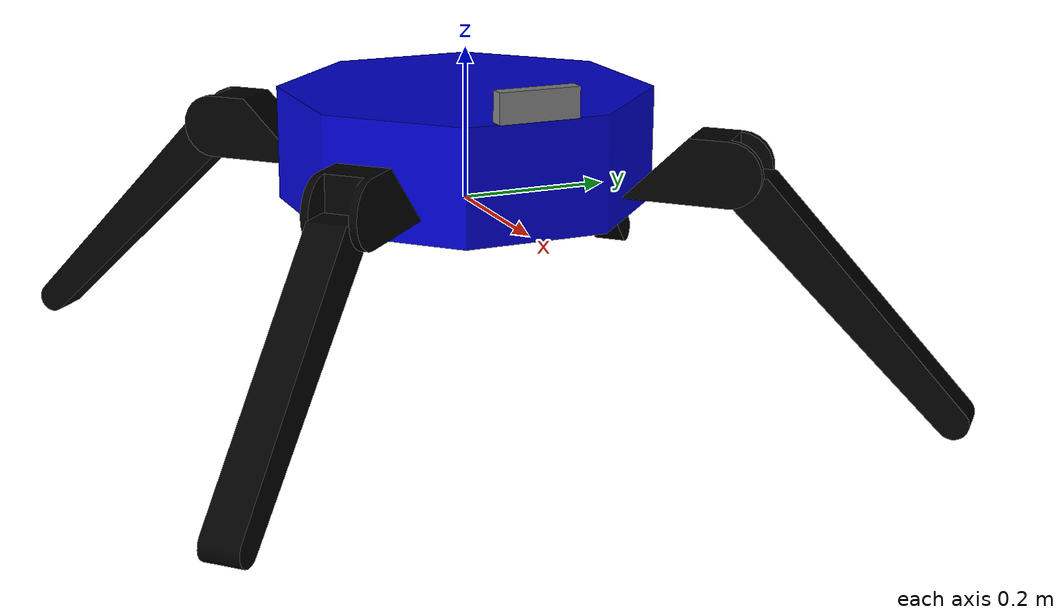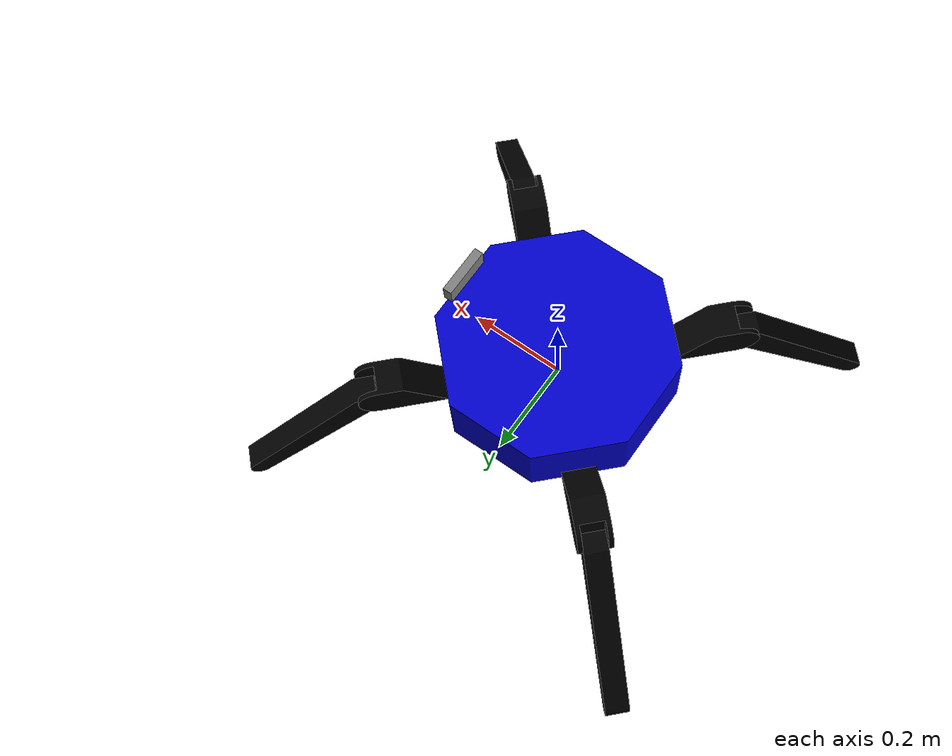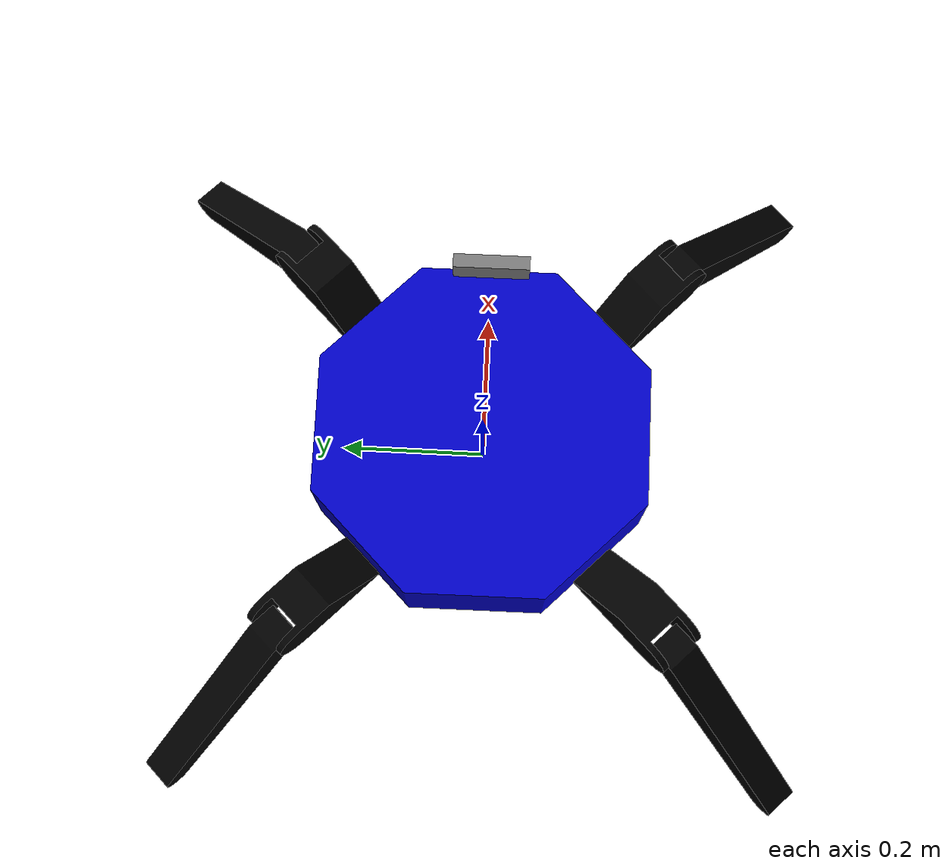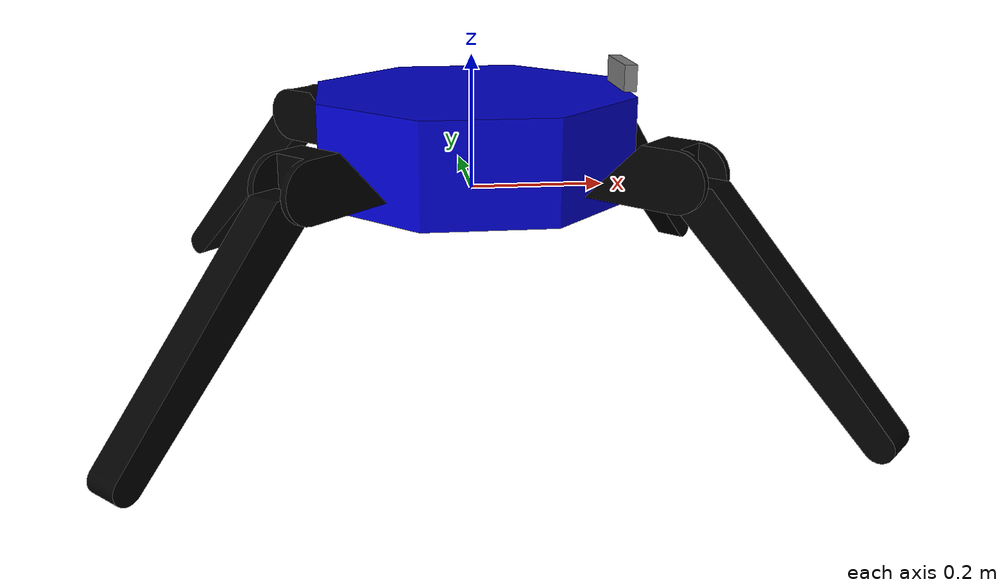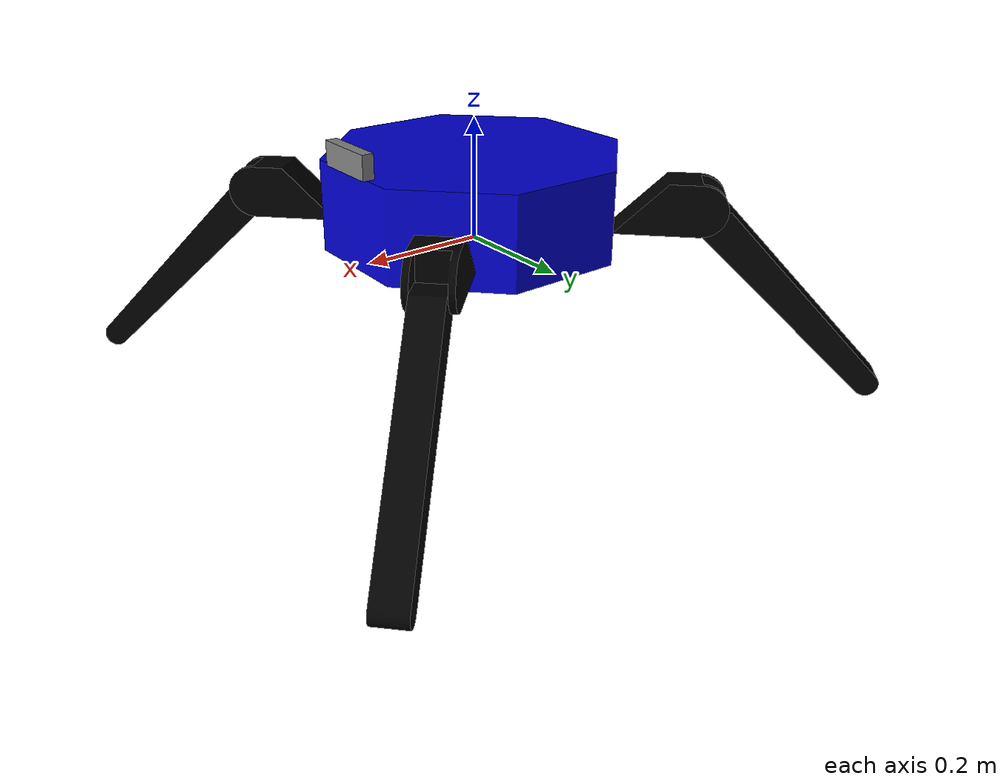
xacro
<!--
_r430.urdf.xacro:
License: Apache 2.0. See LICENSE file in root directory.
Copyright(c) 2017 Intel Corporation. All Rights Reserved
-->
<?xml version = "1.0"?>
<robot xmlns:xacro="http://ros.org/wiki/xacro" name="agent">

<xacro:include filename="$(find urdf_describe)/urdf/materials.xacro"/>
<xacro:include filename="$(find urdf_describe)/urdf/properties.xacro"/>
<xacro:include filename="$(find urdf_describe)/urdf/legs.urdf.xacro"/>
<xacro:include filename="$(find urdf_describe)/urdf/feet.urdf.xacro"/>
<xacro:include filename="$(find urdf_describe)/urdf/base.gazebo"/>
<xacro:include filename="$(find realsense2_camera)/urdf/test_r430_camera.urdf.xacro"/>
<xacro:include filename="$(find urdf_describe)/urdf/transmission.xacro"/>

    <!--base of the body-->
  <link name="link_hexabase">

    <inertial>
      <mass value="${hexa_mass}"/>
      <origin rpy="0 0 0" xyz="0 0 0"/>
      <inertia ixx="0.0395416666667" ixy="0" ixz="0" iyy="0.106208333333" iyz="0" izz="0.106208333333"/>
    </inertial>

    <collision name="collision_hexabase">
      <geometry>
        <mesh filename = "package://urdf_describe/meshes/hexabase.dae"/>
      </geometry>
    </collision>

    <visual>
      <origin rpy="0 0 0" xyz="0 0 0"/>
      <geometry>
        <mesh filename = "package://urdf_describe/meshes/hexabase.dae"/>
      </geometry>
      <material name="blue"/>
    </visual>

  </link>
  <!--camera linkage-->
  <joint name="hexabase2camera" type="fixed">
    <origin rpy="0 0 0" xyz="${hexa_radius} ${camera_calibration_y} ${hexa_height}"/>
    <child link="base_link" />
    <parent link="link_hexabase"/>
  </joint>

  <xacro:front_left_leg/>
  <xacro:front_right_leg/>
  <xacro:hind_left_leg/>
  <xacro:hind_right_leg/>

  <xacro:front_left_foot/>
  <xacro:front_right_foot/>
  <xacro:hind_left_foot/>
  <xacro:hind_right_foot/>

</robot>

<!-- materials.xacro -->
<robot name = "agent" xmlns:xacro = "http://ros.org/wiki/xacro">

  <material name="black">
    <color rgba="0.0 0.0 0.0 1.0"/>
  </material>

  <material name="blue">
    <color rgba="0.0 0.0 0.8 1.0"/>
  </material>

  <material name="green">
    <color rgba="0.0 0.8 0.0 1.0"/>
  </material>

  <material name="grey">
    <color rgba="0.2 0.2 0.2 1.0"/>
  </material>

  <material name="orange">
    <color rgba="${255/255} ${108/255} ${10/255} 1.0"/>
  </material>

  <material name="brown">
    <color rgba="${222/255} ${207/255} ${195/255} 1.0"/>
  </material>

  <material name="red">
    <color rgba="0.8 0.0 0.0 1.0"/>
  </material>

  <material name="white">
    <color rgba="1.0 1.0 1.0 1.0"/>
  </material>

</robot>

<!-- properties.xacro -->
<robot name = "agent" xmlns:xacro = "http://ros.org/wiki/xacro">

      <!--some constants-->
      <xacro:property name="PI" value="3.1415926535897931"/>
      <xacro:property name="PId2" value="1.57079632679489661923"/>
      <xacro:property name="PId4" value="0.78539816339744830961566"/>
      <xacro:property name="SquareRoot2" value = "1.4142135623730950488"/>
      <xacro:property name="SquareRoot3" value = "1.7320508075688772935274463415"/>

      <xacro:property name="UpperJointEffort" value="1000"/>
      <xacro:property name="UpperJointVelocity" value="100"/>

      <!--body property-->
      <xacro:property name="camera_calibration_y" value="0.025"/>
      <xacro:property name="hexa_side_length" value="0.19"/>
      <xacro:property name="hexa_diameter" value="0.45"/>
      <xacro:property name="hexa_radius" value="0.225"/>
      <xacro:property name="hexa_height" value="0.15"/>
      <xacro:property name="hexa_inner_angle" value="2.35619449"/>  <!--135 degree-->

      <xacro:property name="hexa_mass" value="5"/>

      <!--leg property-->
      <xacro:property name="leg_intra_length" value="0.14"/>
      <xacro:property name="leg_pos_from_bottem_hexabase" value="0.03"/>
      <xacro:property name="leg_inter_length" value="0.05"/>
      <xacro:property name="leg_diameter" value="0.08"/>
      <xacro:property name="leg_width" value="0.07"/>

      <xacro:property name="hipyaw_damping" value="0.3"/>   <!--dimension : (N * m * s)/rad-->
      <xacro:property name="hipyaw_friction" value="0.3"/>  <!--dimension : N * m-->
      <xacro:property name="hipyaw_lower_radians" value="0"/>
      <xacro:property name="hipyaw_upper_radians" value="${PId2}"/>
      <xacro:property name="hippitch_damping" value="0.3"/>   <!--dimension : (N * m * s)/rad-->
      <xacro:property name="hippitch_friction" value="0.3"/>  <!--dimension : N * m-->
      <xacro:property name="hippitch_lower_radians" value="0"/>
      <xacro:property name="hippitch_upper_radians" value="${PId2}"/>

      <xacro:property name="leg_mass" value="1"/>
      <xacro:property name="leg_Ixx" value="0.0009"/>
      <xacro:property name="leg_Iyy" value="0.0006"/>
      <xacro:property name="leg_Izz" value="0.0007"/>
      <xacro:property name="leg_Ixy" value="0"/>
      <xacro:property name="leg_Ixz" value="0"/>
      <xacro:property name="leg_Iyz" value="0"/>

      <!--foot property-->
      <xacro:property name="foot_length" value="0.42"/>
      <xacro:property name="knee_radius" value="0.04"/>
      <xacro:property name="foot_height" value="0.05"/>
      <xacro:property name="foot_centroid_x" value="0.135"/>
      <xacro:property name="foot_centroid_y" value="0.135"/>

      <xacro:property name="knee_damping" value="0.3"/>   <!--dimension : (N * m * s)/rad-->
      <xacro:property name="knee_friction" value="0.3"/>  <!--dimension : N * m-->
      <xacro:property name="knee_lower_radians" value="0"/>
      <xacro:property name="knee_upper_radians" value="${PId2}"/>

      <xacro:property name="foot_mass" value="1"/>
      <xacro:property name="foot_Ixx" value="0.0002"/>
      <xacro:property name="foot_Iyy" value="0.001"/>
      <xacro:property name="foot_Izz" value="0.001"/>
      <xacro:property name="foot_Ixy" value="-0.0001"/>
      <xacro:property name="foot_Ixz" value="-0.0001"/>
      <xacro:property name="foot_Iyz" value="-0.0001"/>
</robot>

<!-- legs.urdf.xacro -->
<robot name = "agent" xmlns:xacro="http://ros.org/wiki/xacro">

    <!-- left front leg -->
    <xacro:macro name = "front_left_leg">

        <!--Front Left Hip Yaw-->
        <joint name="joint_front_left_hip_yaw" type="revolute">

            <origin rpy="0 0 ${PId4}" xyz="${hexa_radius/SquareRoot2} ${hexa_radius/SquareRoot2} ${leg_pos_from_bottem_hexabase}"/>
            <child link="link_front_left_hip_yaw" />
            <parent link="link_hexabase"/>
            <axis xyz="0 0 1"/>
            <limit lower="${hipyaw_lower_radians}" upper="${hipyaw_upper_radians}" effort="${UpperJointEffort}" velocity="${UpperJointVelocity}"/>
            <dynamics damping="${hipyaw_damping}" friction="${hipyaw_friction}" />

        </joint>
        <link name="link_front_left_hip_yaw"/>

        <!--   Front Left Hip Pitch  -->
        <joint name="joint_front_left_hip_Pitch" type="revolute">

            <origin rpy="${-PId2} 0 0" xyz="0 0 0"/>
            <child link="link_front_left_leg" />
            <parent link="link_front_left_hip_yaw"/>
            <axis xyz="0 0 1"/>
            <limit lower="${hippitch_lower_radians}" upper="${hippitch_upper_radians}" effort="${UpperJointEffort}" velocity="${UpperJointVelocity}"/>
            <dynamics damping="${hippitch_damping}" friction="${hippitch_friction}" />
            <!--safety_controller-->

        </joint>
        <!--    Front left leg     -->
        <link name="link_front_left_leg">

            <inertial>
                <mass value="${leg_mass}"/>
                <origin rpy="0 0 0" xyz="${leg_intra_length-leg_inter_length/2} ${knee_radius} ${leg_width/2}"/>    <!--centroid position-->
                <inertia ixx="${leg_Ixx}" ixy="0" ixz="0" iyy="${leg_Iyy}" iyz="0" izz="${leg_Izz}"/>
            </inertial>

            <collision name="link_front_left_leg_collision">
                <origin rpy="${PI} 0 0" xyz="0 0 ${leg_width/2}" />
                <geometry>
                     <mesh filename = "package://urdf_describe/meshes/legcollision.dae"/>
                </geometry>
            </collision>

            <visual name="link_front_left_leg_visual">
                <origin rpy="${PI} 0 0" xyz="0 0 ${leg_width/2}"/>
                <geometry>
                    <mesh filename = "package://urdf_describe/meshes/leg.dae"/>
                </geometry>
                <material name="black"/>
            </visual>

        </link>

    </xacro:macro>

    <!-- right front leg -->
    <xacro:macro name = "front_right_leg">

        <!--Front Right Hip Yaw-->
        <joint name="joint_front_right_hip_yaw" type="revolute">

            <origin rpy="0 0 ${-PId4}" xyz="${hexa_radius/SquareRoot2} -${hexa_radius/SquareRoot2} ${leg_pos_from_bottem_hexabase}"/>
            <child link="link_front_right_hip_yaw" />
            <parent link="link_hexabase"/>
            <axis xyz="0 0 1"/>
            <limit lower="${hipyaw_lower_radians}" upper="${hipyaw_upper_radians}" effort="${UpperJointEffort}" velocity="${UpperJointVelocity}"/>
            <dynamics damping="${hipyaw_damping}" friction="${hipyaw_friction}" />

        </joint>
        <link name="link_front_right_hip_yaw"/>

        <!--   Front Right Hip Pitch  -->
        <joint name="joint_front_right_hip_Pitch" type="revolute">

            <origin rpy="${-PId2} 0 0" xyz="0 0 0"/>
            <child link="link_front_right_leg" />
            <parent link="link_front_right_hip_yaw"/>
            <axis xyz="0 0 1"/>
            <limit lower="${hippitch_lower_radians}" upper="${hippitch_upper_radians}" effort="${UpperJointEffort}" velocity="${UpperJointVelocity}"/>
            <dynamics damping="${hippitch_damping}" friction="${hippitch_friction}" />
            <!--safety_controller-->

        </joint>
        <!--    Front Right leg     -->
        <link name="link_front_right_leg">

            <inertial>
                <mass value="${leg_mass}"/>
                <origin rpy="0 0 0" xyz="${leg_intra_length-leg_inter_length/2} ${knee_radius} ${leg_width/2}"/>    <!--centroid position-->
                <inertia ixx="${leg_Ixx}" ixy="0" ixz="0" iyy="${leg_Iyy}" iyz="0" izz="${leg_Izz}"/>
            </inertial>

            <collision name="link_front_right_leg_collision">
                <origin rpy="${PI} 0 0" xyz="0 0 ${leg_width/2}" />
                <geometry>
                    <mesh filename = "package://urdf_describe/meshes/legcollision.dae"/>
                </geometry>
            </collision>

            <visual name="link_front_right_leg_visual">
                <origin rpy="${PI} 0 0" xyz="0 0 ${leg_width/2}"/>
                <geometry>
                    <mesh filename = "package://urdf_describe/meshes/leg.dae"/>
                </geometry>
                <material name="black"/>
            </visual>

        </link>

    </xacro:macro>

    <!-- left hind leg -->
    <xacro:macro name = "hind_left_leg">

        <!--hind Left Hip Yaw-->
        <joint name="joint_hind_left_hip_yaw" type="revolute">

            <origin rpy="0 0 ${PId4+PId2}" xyz="${-hexa_radius/SquareRoot2} ${hexa_radius/SquareRoot2} ${leg_pos_from_bottem_hexabase}"/>
            <child link="link_hind_left_hip_yaw" />
            <parent link="link_hexabase"/>
            <axis xyz="0 0 1"/>
            <limit lower="${hipyaw_lower_radians}" upper="${hipyaw_upper_radians}" effort="${UpperJointEffort}" velocity="${UpperJointVelocity}"/>
            <dynamics damping="${hipyaw_damping}" friction="${hipyaw_friction}" />

        </joint>
        <link name="link_hind_left_hip_yaw"/>

        <!--   hind Left Hip Pitch  -->
        <joint name="joint_hind_left_hip_Pitch" type="revolute">

            <origin rpy="${-PId2} 0 0" xyz="0 0 0"/>
            <child link="link_hind_left_leg" />
            <parent link="link_hind_left_hip_yaw"/>
            <axis xyz="0 0 1"/>
            <limit lower="${hippitch_lower_radians}" upper="${hippitch_upper_radians}" effort="${UpperJointEffort}" velocity="${UpperJointVelocity}"/>
            <dynamics damping="${hippitch_damping}" friction="${hippitch_friction}" />
            <!--safety_controller-->

        </joint>
        <!--    hind left leg     -->
        <link name="link_hind_left_leg">

            <inertial>
                <mass value="${leg_mass}"/>
                <origin rpy="0 0 0" xyz="${leg_intra_length-leg_inter_length/2} ${knee_radius} ${leg_width/2}"/>    <!--centroid position-->
                <inertia ixx="${leg_Ixx}" ixy="0" ixz="0" iyy="${leg_Iyy}" iyz="0" izz="${leg_Izz}"/>
            </inertial>

            <collision name="link_hind_left_leg_collision">
                <origin rpy="${PI} 0 0" xyz="0 0 ${leg_width/2}" />
                <geometry>
                    <mesh filename = "package://urdf_describe/meshes/legcollision.dae"/>
                </geometry>
            </collision>

            <visual name="link_hind_left_leg_visual">
                <origin rpy="${PI} 0 0" xyz="0 0 ${leg_width/2}"/>
                <geometry>
                    <mesh filename = "package://urdf_describe/meshes/leg.dae"/>
                </geometry>
                <material name="black"/>
            </visual>

        </link>

    </xacro:macro>

    <!-- right hind leg -->
    <xacro:macro name = "hind_right_leg">

        <!--hind Right Hip Yaw-->
        <joint name="joint_hind_right_hip_yaw" type="revolute">

            <origin rpy="0 0 ${-PId4-PId2}" xyz="${-hexa_radius/SquareRoot2} ${-hexa_radius/SquareRoot2} ${leg_pos_from_bottem_hexabase}"/>
            <child link="link_hind_right_hip_yaw" />
            <parent link="link_hexabase"/>
            <axis xyz="0 0 1"/>
            <limit lower="${hipyaw_lower_radians}" upper="${hipyaw_upper_radians}" effort="${UpperJointEffort}" velocity="${UpperJointVelocity}"/>
            <dynamics damping="${hipyaw_damping}" friction="${hipyaw_friction}" />

        </joint>
        <link name="link_hind_right_hip_yaw"/>

        <!--   hind Right Hip Pitch  -->
        <joint name="joint_hind_right_hip_Pitch" type="revolute">

            <origin rpy="${-PId2} 0 0" xyz="0 0 0"/>
            <child link="link_hind_right_leg" />
            <parent link="link_hind_right_hip_yaw"/>
            <axis xyz="0 0 1"/>
            <limit lower="${hippitch_lower_radians}" upper="${hippitch_upper_radians}" effort="${UpperJointEffort}" velocity="${UpperJointVelocity}"/>
            <dynamics damping="${hippitch_damping}" friction="${hippitch_friction}" />
            <!--safety_controller-->

        </joint>
        <!--    hind Right leg     -->
        <link name="link_hind_right_leg">

            <inertial>
                <mass value="${leg_mass}"/>
                <origin rpy="0 0 0" xyz="${leg_intra_length-leg_inter_length/2} ${knee_radius} ${leg_width/2}"/>    <!--centroid position-->
                <inertia ixx="${leg_Ixx}" ixy="0" ixz="0" iyy="${leg_Iyy}" iyz="0" izz="${leg_Izz}"/>
            </inertial>

            <collision name="link_hind_right_leg_collision">
                <origin rpy="${PI} 0 0" xyz="0 0 ${leg_width/2}" />
                <geometry>
                    <mesh filename = "package://urdf_describe/meshes/legcollision.dae"/>
                </geometry>
            </collision>

            <visual name="link_hind_right_leg_visual">
                <origin rpy="${PI} 0 0" xyz="0 0 ${leg_width/2}"/>
                <geometry>
                    <mesh filename = "package://urdf_describe/meshes/leg.dae"/>
                </geometry>
                <material name="black"/>
            </visual>

        </link>

    </xacro:macro>

</robot>

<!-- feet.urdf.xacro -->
<robot name = "agent" xmlns:xacro = "http://ros.org/wiki/xacro">

    <!-- front left foot -->
    <xacro:macro name = "front_left_foot">

        <!--   Joint for left front foot  -->
        <joint name="joint_front_left_foot_yaw" type="revolute">

            <origin rpy="0 0 0" xyz="${leg_intra_length} ${-leg_diameter/2} 0"/>
            <parent link="link_front_left_leg" />
            <child link="link_front_left_foot"/>
            <axis xyz="0 0 1"/>
            <limit lower="${knee_lower_radians}" upper="${knee_upper_radians}" effort="${UpperJointEffort}" velocity="${UpperJointVelocity}"/>
            <dynamics damping="${knee_damping}" friction="${knee_friction}" />

        </joint>

        <link name="link_front_left_foot">

            <inertial>
                <mass value="${foot_mass}"/>
                <origin rpy="0 0 ${PId4}" xyz="${foot_centroid_x} ${foot_centroid_y} ${foot_height/2}"/>
                <inertia ixx="${foot_Ixx}" ixy="${foot_Ixy}" ixz="${foot_Ixz}" iyy="${foot_Iyy}" iyz="${foot_Iyz}" izz="${foot_Izz}"/>
            </inertial>

            <collision name="link_front_left_foot_collision">
                <origin rpy="0 0 0" xyz="0 0 ${-foot_height/2}" />
                <geometry>
                    <mesh filename = "package://urdf_describe/meshes/foot.dae"/>
                </geometry>
            </collision>

            <visual name="link_front_left_foot_visual">
                <origin rpy="0 0 0" xyz="0 0 ${-foot_height/2}"/>
                <geometry>
                    <mesh filename = "package://urdf_describe/meshes/foot.dae"/>
                </geometry>
                <material name="black"/>
            </visual>

        </link>

    </xacro:macro>

    <!-- front right foot -->
    <xacro:macro name = "front_right_foot">

        <!--   Joint for right front foot  -->
        <joint name="joint_front_right_foot_yaw" type="revolute">

            <origin rpy="0 0 0" xyz="${leg_intra_length} ${-leg_diameter/2} 0"/>
            <parent link="link_front_right_leg" />
            <child link="link_front_right_foot"/>
            <axis xyz="0 0 1"/>
            <limit lower="${knee_lower_radians}" upper="${knee_upper_radians}" effort="${UpperJointEffort}" velocity="${UpperJointVelocity}"/>
            <dynamics damping="${knee_damping}" friction="${knee_friction}" />

        </joint>

        <link name="link_front_right_foot">

            <inertial>
                <mass value="${foot_mass}"/>
                <origin rpy="0 0 ${PId4}" xyz="${foot_centroid_x} ${foot_centroid_y} ${foot_height/2}"/>
                <inertia ixx="${foot_Ixx}" ixy="${foot_Ixy}" ixz="${foot_Ixz}" iyy="${foot_Iyy}" iyz="${foot_Iyz}" izz="${foot_Izz}"/>
            </inertial>

            <collision name="link_front_right_foot_collision">
                <origin rpy="0 0 0" xyz="0 0 ${-foot_height/2}" />
                <geometry>
                    <mesh filename = "package://urdf_describe/meshes/foot.dae"/>
                </geometry>
            </collision>

            <visual name="link_front_right_foot_visual">
                <origin rpy="0 0 0" xyz="0 0 ${-foot_height/2}"/>
                <geometry>
                    <mesh filename = "package://urdf_describe/meshes/foot.dae"/>
                </geometry>
                <material name="black"/>
            </visual>

        </link>

    </xacro:macro>

    <!-- hind left foot -->
    <xacro:macro name = "hind_left_foot">

        <!--   Joint for left hind foot  -->
        <joint name="joint_hind_left_foot_yaw" type="revolute">

            <origin rpy="0 0 0" xyz="${leg_intra_length} ${-leg_diameter/2} 0"/>
            <parent link="link_hind_left_leg" />
            <child link="link_hind_left_foot"/>
            <axis xyz="0 0 1"/>
            <limit lower="${knee_lower_radians}" upper="${knee_upper_radians}" effort="${UpperJointEffort}" velocity="${UpperJointVelocity}"/>
            <dynamics damping="${knee_damping}" friction="${knee_friction}" />

        </joint>

        <link name="link_hind_left_foot">

            <inertial>
                <mass value="${foot_mass}"/>
                <origin rpy="0 0 ${PId4}" xyz="${foot_centroid_x} ${foot_centroid_y} ${foot_height/2}"/>
                <inertia ixx="${foot_Ixx}" ixy="${foot_Ixy}" ixz="${foot_Ixz}" iyy="${foot_Iyy}" iyz="${foot_Iyz}" izz="${foot_Izz}"/>
            </inertial>

            <collision name="link_hind_left_foot_collision">
                <origin rpy="0 0 0" xyz="0 0 ${-foot_height/2}" />
                <geometry>
                    <mesh filename = "package://urdf_describe/meshes/foot.dae"/>
                </geometry>
            </collision>

            <visual name="link_hind_left_foot_visual">
                <origin rpy="0 0 0" xyz="0 0 ${-foot_height/2}"/>
                <geometry>
                    <mesh filename = "package://urdf_describe/meshes/foot.dae"/>
                </geometry>
                <material name="black"/>
            </visual>

        </link>

    </xacro:macro>

    <!-- hind right foot -->
    <xacro:macro name = "hind_right_foot">

        <!--   Joint for right hind foot  -->
        <joint name="joint_hind_right_foot_yaw" type="revolute">

            <origin rpy="0 0 0" xyz="${leg_intra_length} ${-leg_diameter/2} 0"/>
            <parent link="link_hind_right_leg" />
            <child link="link_hind_right_foot"/>
            <axis xyz="0 0 1"/>
            <limit lower="${knee_lower_radians}" upper="${knee_upper_radians}" effort="${UpperJointEffort}" velocity="${UpperJointVelocity}"/>
            <dynamics damping="${knee_damping}" friction="${knee_friction}" />

        </joint>

        <link name="link_hind_right_foot">

            <inertial>
                <mass value="${foot_mass}"/>
                <origin rpy="0 0 ${PId4}" xyz="${foot_centroid_x} ${foot_centroid_y} ${foot_height/2}"/>
                <inertia ixx="${foot_Ixx}" ixy="${foot_Ixy}" ixz="${foot_Ixz}" iyy="${foot_Iyy}" iyz="${foot_Iyz}" izz="${foot_Izz}"/>
            </inertial>

            <collision name="link_hind_right_foot_collision">
                <origin rpy="0 0 0" xyz="0 0 ${-foot_height/2}" />
                <geometry>
                    <mesh filename = "package://urdf_describe/meshes/foot.dae"/>
                </geometry>
            </collision>

            <visual name="link_hind_right_foot_visual">
                <origin rpy="0 0 0" xyz="0 0 ${-foot_height/2}"/>
                <geometry>
                    <mesh filename = "package://urdf_describe/meshes/foot.dae"/>
                </geometry>
                <material name="black"/>
            </visual>

        </link>

    </xacro:macro>

</robot>

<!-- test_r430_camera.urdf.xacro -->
<robot name="realsense2_camera" xmlns:xacro="http://ros.org/wiki/xacro">
  <xacro:include filename="$(find realsense2_camera)/urdf/_r430.urdf.xacro"/>

  <link name="base_link" />
  <sensor_r430 parent="base_link">
    <origin xyz="0 0 0" rpy="0 0 0"/>
  </sensor_r430>
</robot>

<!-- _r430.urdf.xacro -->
<robot name="sensor_r430" xmlns:xacro="http://ros.org/wiki/xacro">
  <xacro:property name="M_PI" value="3.1415926535897931" />

  <!-- The following values are approximate, and the camera node
   publishing TF values with actual calibrated camera extrinsic values -->
  <xacro:property name="r430_cam_depth_to_left_ir_offset" value="-0.025"/>
  <xacro:property name="r430_cam_depth_to_right_ir_offset" value="0.025"/>
  <xacro:property name="r430_cam_depth_to_fisheye_offset" value="0.042"/>

  <!-- The following values model the aluminum peripherial case for the
    R430 camera, with the camera joint represented by the actual
    peripherial camera tripod mount -->
  <xacro:property name="r430_cam_width" value="0.105"/>
  <xacro:property name="r430_cam_height" value="0.039"/>
  <xacro:property name="r430_cam_depth" value="0.019"/>
  <xacro:property name="r430_cam_mount_from_center_offset" value=".0275"/>

  <!-- The following offset is relative the the physical R430 camera peripherial
    camera tripod mount -->
  <xacro:property name="r430_cam_depth_px" value="0.00"/>
  <xacro:property name="r430_cam_depth_py" value="-0.035"/>
  <xacro:property name="r430_cam_depth_pz" value="0.028"/>

  <material name="aluminum">
    <color rgba="0.5 0.5 0.5 1"/>
  </material>

  <xacro:macro name="sensor_r430" params="parent *origin">

    <!-- camera body, with origin at bottom screw mount -->
    <joint name="camera_joint" type="fixed">
      <xacro:insert_block name="origin" />
      <parent link="${parent}"/>
      <child link="camera_link" />
    </joint>

    <link name="camera_link">
      <visual>
      <origin xyz="0 ${-r430_cam_mount_from_center_offset} ${r430_cam_height/2}" rpy="${M_PI/2} 0 ${M_PI/2}"/>
        <geometry>
          <box size="${r430_cam_width} ${r430_cam_height} ${r430_cam_depth}"/>
        </geometry>
        <material name="aluminum"/>
      </visual>
      <collision>
        <origin xyz="0.0 0.0 ${r430_cam_height/2}" rpy="0 0 0"/>
        <geometry>
        <box size="${r430_cam_depth} ${r430_cam_width} ${r430_cam_height}"/>
        </geometry>
      </collision>
      <inertial>
        <!-- The following are not reliable values, and should not be used for modeling -->
        <mass value="0.564" />
        <origin xyz="0 0 0" />
        <inertia ixx="0.003881243" ixy="0.0" ixz="0.0" iyy="0.000498940" iyz="0.0" izz="0.003879257" />
      </inertial>
    </link>

    <!-- camera depth joints and links -->
    <joint name="camera_depth_joint" type="fixed">
      <origin xyz="${r430_cam_depth_px} ${r430_cam_depth_py} ${r430_cam_depth_pz}" rpy="0 0 0"/>
      <parent link="camera_link"/>
      <child link="camera_depth_frame" />
    </joint>
    <link name="camera_depth_frame"/>

    <joint name="camera_depth_optical_joint" type="fixed">
      <origin xyz="0 0 0" rpy="${-M_PI/2} 0 ${-M_PI/2}" />
      <parent link="camera_depth_frame" />
      <child link="camera_depth_optical_frame" />
    </joint>
    <link name="camera_depth_optical_frame"/>

    <!-- camera left IR joints and links -->
    <joint name="camera_left_ir_joint" type="fixed">
      <origin xyz="0 ${r430_cam_depth_to_left_ir_offset} 0" rpy="0 0 0" />
      <parent link="camera_depth_frame" />
      <child link="camera_left_ir_frame" />
    </joint>
    <link name="camera_left_ir_frame"/>

    <joint name="camera_left_ir_optical_joint" type="fixed">
      <origin xyz="0 0 0" rpy="${-M_PI/2} 0 ${-M_PI/2}" />
      <parent link="camera_left_ir_frame" />
      <child link="camera_left_ir_optical_frame" />
    </joint>
    <link name="camera_left_ir_optical_frame"/>

    <!-- camera right IR joints and links -->
    <joint name="camera_right_ir_joint" type="fixed">
      <origin xyz="0 ${r430_cam_depth_to_right_ir_offset} 0" rpy="0 0 0" />
      <parent link="camera_depth_frame" />
      <child link="camera_right_ir_frame" />
    </joint>
    <link name="camera_right_ir_frame"/>

    <joint name="camera_right_ir_optical_joint" type="fixed">
      <origin xyz="0 0 0" rpy="${-M_PI/2} 0 ${-M_PI/2}" />
      <parent link="camera_right_ir_frame" />
      <child link="camera_right_ir_optical_frame" />
    </joint>
    <link name="camera_right_ir_optical_frame"/>

    <!-- camera fisheye joints and links -->
    <joint name="camera_fisheye_joint" type="fixed">
      <origin xyz="0 ${r430_cam_depth_to_fisheye_offset} 0" rpy="0 0 0" />
      <parent link="camera_depth_frame" />
      <child link="camera_fisheye_frame" />
    </joint>
    <link name="camera_fisheye_frame"/>

    <joint name="camera_fisheye_optical_joint" type="fixed">
      <origin xyz="0 0 0" rpy="${-M_PI/2} 0 ${-M_PI/2}" />
      <parent link="camera_fisheye_frame" />
      <child link="camera_fisheye_optical_frame" />
    </joint>
    <link name="camera_fisheye_optical_frame"/>

  </xacro:macro>
</robot>
